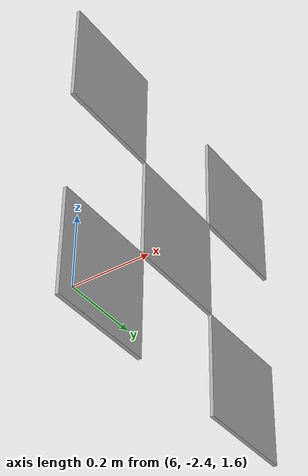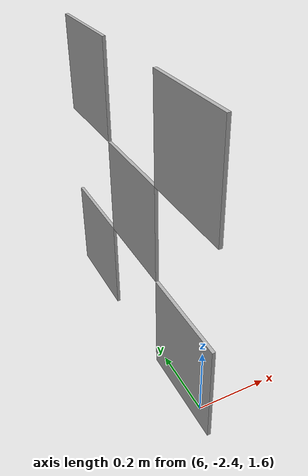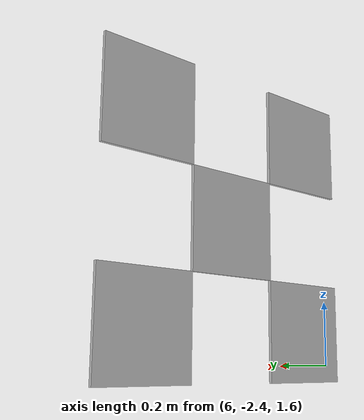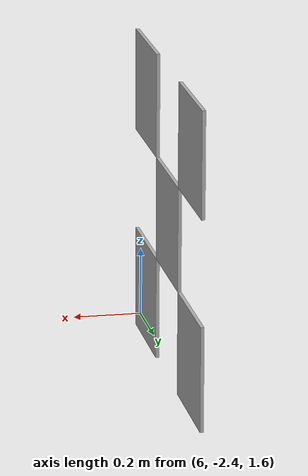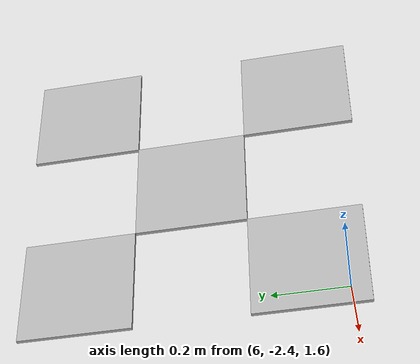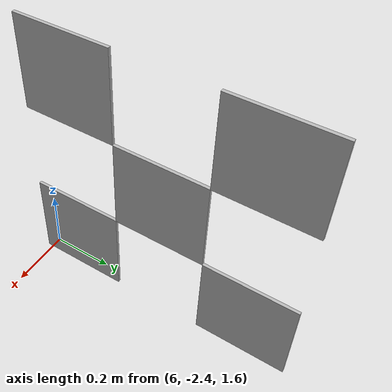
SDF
<?xml version="1.0" ?>
<sdf version="1.4">

	<model name='tag_bundle2'>

		<static>True</static>

		<link name="tag_5">

			<pose>6 -2 2 -1.5713 0 0</pose>

			<inertial>
	        	<mass>0.1</mass>

	        	<inertia>
					<ixx>0.0166667</ixx>
					<ixy>0</ixy>
					<ixz>0</ixz>
					<iyy>0.0166667</iyy>
					<iyz>0</iyz>
					<izz>0.0166667</izz>
        		</inertia>

        		<pose frame=''>0 0 0 0 -0 0</pose>
      		</inertial>

			<pose frame=''>0 0 0 0 -0 0</pose>
			<gravity>1</gravity>
			<self_collide>0</self_collide>
			<kinematic>0</kinematic>
			<enable_wind>0</enable_wind>

			<visual name='visual_5'>
				<pose frame=''>0 0 0 0 -0 0</pose>

		        <geometry>
		        	<box>
		        	<size>0.01 0.3 0.3</size>
		        	</box>
		        </geometry>

		        <material>
		        	<lighting>0</lighting>

		        	<script>
		        		<uri>models://media/materials/scripts/Apriltag.material</uri>
		        		<name>Apriltag/id5</name>
		          	</script>

		        	<shader type='vertex'>
		        		<normal_map>__default__</normal_map>
		          	</shader>

		        	<ambient>0.3 0.3 0.3 1</ambient>
		        	<diffuse>0.7 0.7 0.7 1</diffuse>
		        	<specular>0.01 0.01 0.01 1</specular>
		        	<emissive>0 0 0 1</emissive>
		        </material>

		        <transparency>0</transparency>
		        <cast_shadows>1</cast_shadows>
			</visual>

			<collision name='collision_5'>
				<laser_retro>0</laser_retro>
        		<max_contacts>10</max_contacts>
        		<pose frame=''>0 0 0 0 -0 0</pose>

		        <geometry>
		        	<box>
		        		<size>0.01 0.3 0.3</size>
		        	</box>
		        </geometry>

		        <surface>
		        	<friction>
		            	<ode>
		            		<mu>1</mu>
		            		<mu2>1</mu2>
		            		<fdir1>0 0 0</fdir1>
		            		<slip1>0</slip1>
		            		<slip2>0</slip2>
		            	</ode>

		           		<torsional>
		            		<coefficient>1</coefficient>
	            			<patch_radius>0</patch_radius>
	            			<surface_radius>0</surface_radius>
	            			<use_patch_radius>1</use_patch_radius>

	            			<ode>
		                		<slip>0</slip>
		              		</ode>
		            	</torsional>
		          	</friction>

		        	<bounce>
		            	<restitution_coefficient>0</restitution_coefficient>
		            	<threshold>1e+06</threshold>
		        	</bounce>

		        	<contact>
		            	<collide_without_contact>0</collide_without_contact>
		            	<collide_without_contact_bitmask>1</collide_without_contact_bitmask>
		            	<collide_bitmask>1</collide_bitmask>

		            	<ode>
		            		<soft_cfm>0</soft_cfm>
		            		<soft_erp>0.2</soft_erp>
		            		<kp>1e+13</kp>
		            		<kd>1</kd>
		            		<max_vel>0.01</max_vel>
		            		<min_depth>0</min_depth>
		            	</ode>

			            <bullet>
			            	<split_impulse>1</split_impulse>
			            	<split_impulse_penetration_threshold>-0.01</split_impulse_penetration_threshold>
			            	<soft_cfm>0</soft_cfm>
			            	<soft_erp>0.2</soft_erp>
			            	<kp>1e+13</kp>
			            	<kd>1</kd>
			            </bullet>
		        	</contact>
		        </surface>
		    </collision>
		</link>
 -->
		<link name="tag_6">

			<pose>6 -2.3 2.3 -1.5713 0 0</pose>

			<inertial>
	        	<mass>0.1</mass>

	        	<inertia>
					<ixx>0.0166667</ixx>
					<ixy>0</ixy>
					<ixz>0</ixz>
					<iyy>0.0166667</iyy>
					<iyz>0</iyz>
					<izz>0.0166667</izz>
        		</inertia>

        		<pose frame=''>0 0 0 0 -0 0</pose>
      		</inertial>

			<pose frame=''>0 0 0 0 -0 0</pose>
			<gravity>1</gravity>
			<self_collide>0</self_collide>
			<kinematic>0</kinematic>
			<enable_wind>0</enable_wind>

			<visual name='visual_6'>
				<pose frame=''>0 0 0 0 -0 0</pose>

		        <geometry>
		        	<box>
		        	<size>0.01 0.3 0.3</size>
		        	</box>
		        </geometry>

		        <material>
		        	<lighting>0</lighting>

		        	<script>
		        		<uri>models://media/materials/scripts/Apriltag.material</uri>
		        		<name>Apriltag/id6</name>
		          	</script>

		        	<shader type='vertex'>
		        		<normal_map>__default__</normal_map>
		          	</shader>

		        	<ambient>0.3 0.3 0.3 1</ambient>
		        	<diffuse>0.7 0.7 0.7 1</diffuse>
		        	<specular>0.01 0.01 0.01 1</specular>
		        	<emissive>0 0 0 1</emissive>
		        </material>

		        <transparency>0</transparency>
		        <cast_shadows>1</cast_shadows>
			</visual>

			<collision name='collision_6'>
				<laser_retro>0</laser_retro>
        		<max_contacts>10</max_contacts>
        		<pose frame=''>0 0 0 0 -0 0</pose>

		        <geometry>
		        	<box>
		        		<size>0.01 0.3 0.3</size>
		        	</box>
		        </geometry>

		        <surface>
		        	<friction>
		            	<ode>
		            		<mu>1</mu>
		            		<mu2>1</mu2>
		            		<fdir1>0 0 0</fdir1>
		            		<slip1>0</slip1>
		            		<slip2>0</slip2>
		            	</ode>

		           		<torsional>
		            		<coefficient>1</coefficient>
	            			<patch_radius>0</patch_radius>
	            			<surface_radius>0</surface_radius>
	            			<use_patch_radius>1</use_patch_radius>

	            			<ode>
		                		<slip>0</slip>
		              		</ode>
		            	</torsional>
		          	</friction>

		        	<bounce>
		            	<restitution_coefficient>0</restitution_coefficient>
		            	<threshold>1e+06</threshold>
		        	</bounce>

		        	<contact>
		            	<collide_without_contact>0</collide_without_contact>
		            	<collide_without_contact_bitmask>1</collide_without_contact_bitmask>
		            	<collide_bitmask>1</collide_bitmask>

		            	<ode>
		            		<soft_cfm>0</soft_cfm>
		            		<soft_erp>0.2</soft_erp>
		            		<kp>1e+13</kp>
		            		<kd>1</kd>
		            		<max_vel>0.01</max_vel>
		            		<min_depth>0</min_depth>
		            	</ode>

			            <bullet>
			            	<split_impulse>1</split_impulse>
			            	<split_impulse_penetration_threshold>-0.01</split_impulse_penetration_threshold>
			            	<soft_cfm>0</soft_cfm>
			            	<soft_erp>0.2</soft_erp>
			            	<kp>1e+13</kp>
			            	<kd>1</kd>
			            </bullet>
		        	</contact>
		        </surface>
		    </collision>
		</link>

		<link name="tag_7">

			<pose>6 -1.7 2.3 -1.5713 0 0</pose>

			<inertial>
	        	<mass>0.1</mass>

	        	<inertia>
					<ixx>0.0166667</ixx>
					<ixy>0</ixy>
					<ixz>0</ixz>
					<iyy>0.0166667</iyy>
					<iyz>0</iyz>
					<izz>0.0166667</izz>
        		</inertia>

        		<pose frame=''>0 0 0 0 -0 0</pose>
      		</inertial>

			<pose frame=''>0 0 0 0 -0 0</pose>
			<gravity>1</gravity>
			<self_collide>0</self_collide>
			<kinematic>0</kinematic>
			<enable_wind>0</enable_wind>

			<visual name='visual_7'>
				<pose frame=''>0 0 0 0 -0 0</pose>

		        <geometry>
		        	<box>
		        	<size>0.01 0.3 0.3</size>
		        	</box>
		        </geometry>

		        <material>
		        	<lighting>0</lighting>

		        	<script>
		        		<uri>models://media/materials/scripts/Apriltag.material</uri>
		        		<name>Apriltag/id7</name>
		          	</script>

		        	<shader type='vertex'>
		        		<normal_map>__default__</normal_map>
		          	</shader>

		        	<ambient>0.3 0.3 0.3 1</ambient>
		        	<diffuse>0.7 0.7 0.7 1</diffuse>
		        	<specular>0.01 0.01 0.01 1</specular>
		        	<emissive>0 0 0 1</emissive>
		        </material>

		        <transparency>0</transparency>
		        <cast_shadows>1</cast_shadows>
			</visual>

			<collision name='collision_7'>
				<laser_retro>0</laser_retro>
        		<max_contacts>10</max_contacts>
        		<pose frame=''>0 0 0 0 -0 0</pose>

		        <geometry>
		        	<box>
		        		<size>0.01 0.3 0.3</size>
		        	</box>
		        </geometry>

		        <surface>
		        	<friction>
		            	<ode>
		            		<mu>1</mu>
		            		<mu2>1</mu2>
		            		<fdir1>0 0 0</fdir1>
		            		<slip1>0</slip1>
		            		<slip2>0</slip2>
		            	</ode>

		           		<torsional>
		            		<coefficient>1</coefficient>
	            			<patch_radius>0</patch_radius>
	            			<surface_radius>0</surface_radius>
	            			<use_patch_radius>1</use_patch_radius>

	            			<ode>
		                		<slip>0</slip>
		              		</ode>
		            	</torsional>
		          	</friction>

		        	<bounce>
		            	<restitution_coefficient>0</restitution_coefficient>
		            	<threshold>1e+06</threshold>
		        	</bounce>

		        	<contact>
		            	<collide_without_contact>0</collide_without_contact>
		            	<collide_without_contact_bitmask>1</collide_without_contact_bitmask>
		            	<collide_bitmask>1</collide_bitmask>

		            	<ode>
		            		<soft_cfm>0</soft_cfm>
		            		<soft_erp>0.2</soft_erp>
		            		<kp>1e+13</kp>
		            		<kd>1</kd>
		            		<max_vel>0.01</max_vel>
		            		<min_depth>0</min_depth>
		            	</ode>

			            <bullet>
			            	<split_impulse>1</split_impulse>
			            	<split_impulse_penetration_threshold>-0.01</split_impulse_penetration_threshold>
			            	<soft_cfm>0</soft_cfm>
			            	<soft_erp>0.2</soft_erp>
			            	<kp>1e+13</kp>
			            	<kd>1</kd>
			            </bullet>
		        	</contact>
		        </surface>
		    </collision>
		</link>

		<link name="tag_8">

			<pose>6 -1.7 1.7 -1.5713 0 0</pose>

			<inertial>
	        	<mass>0.1</mass>

	        	<inertia>
					<ixx>0.0166667</ixx>
					<ixy>0</ixy>
					<ixz>0</ixz>
					<iyy>0.0166667</iyy>
					<iyz>0</iyz>
					<izz>0.0166667</izz>
        		</inertia>

        		<pose frame=''>0 0 0 0 -0 0</pose>
      		</inertial>

			<pose frame=''>0 0 0 0 -0 0</pose>
			<gravity>1</gravity>
			<self_collide>0</self_collide>
			<kinematic>0</kinematic>
			<enable_wind>0</enable_wind>

			<visual name='visual_8'>
				<pose frame=''>0 0 0 0 -0 0</pose>

		        <geometry>
		        	<box>
		        	<size>0.01 0.3 0.3</size>
		        	</box>
		        </geometry>

		        <material>
		        	<lighting>0</lighting>

		        	<script>
		        		<uri>models://media/materials/scripts/Apriltag.material</uri>
		        		<name>Apriltag/id8</name>
		          	</script>

		        	<shader type='vertex'>
		        		<normal_map>__default__</normal_map>
		          	</shader>

		        	<ambient>0.3 0.3 0.3 1</ambient>
		        	<diffuse>0.7 0.7 0.7 1</diffuse>
		        	<specular>0.01 0.01 0.01 1</specular>
		        	<emissive>0 0 0 1</emissive>
		        </material>

		        <transparency>0</transparency>
		        <cast_shadows>1</cast_shadows>
			</visual>

			<collision name='collision_8'>
				<laser_retro>0</laser_retro>
        		<max_contacts>10</max_contacts>
        		<pose frame=''>0 0 0 0 -0 0</pose>

		        <geometry>
		        	<box>
		        		<size>0.01 0.3 0.3</size>
		        	</box>
		        </geometry>

		        <surface>
		        	<friction>
		            	<ode>
		            		<mu>1</mu>
		            		<mu2>1</mu2>
		            		<fdir1>0 0 0</fdir1>
		            		<slip1>0</slip1>
		            		<slip2>0</slip2>
		            	</ode>

		           		<torsional>
		            		<coefficient>1</coefficient>
	            			<patch_radius>0</patch_radius>
	            			<surface_radius>0</surface_radius>
	            			<use_patch_radius>1</use_patch_radius>

	            			<ode>
		                		<slip>0</slip>
		              		</ode>
		            	</torsional>
		          	</friction>

		        	<bounce>
		            	<restitution_coefficient>0</restitution_coefficient>
		            	<threshold>1e+06</threshold>
		        	</bounce>

		        	<contact>
		            	<collide_without_contact>0</collide_without_contact>
		            	<collide_without_contact_bitmask>1</collide_without_contact_bitmask>
		            	<collide_bitmask>1</collide_bitmask>

		            	<ode>
		            		<soft_cfm>0</soft_cfm>
		            		<soft_erp>0.2</soft_erp>
		            		<kp>1e+13</kp>
		            		<kd>1</kd>
		            		<max_vel>0.01</max_vel>
		            		<min_depth>0</min_depth>
		            	</ode>

			            <bullet>
			            	<split_impulse>1</split_impulse>
			            	<split_impulse_penetration_threshold>-0.01</split_impulse_penetration_threshold>
			            	<soft_cfm>0</soft_cfm>
			            	<soft_erp>0.2</soft_erp>
			            	<kp>1e+13</kp>
			            	<kd>1</kd>
			            </bullet>
		        	</contact>
		        </surface>
		    </collision>
		</link>

		<link name="tag_9">

			<pose>6 -2.3 1.7 -1.5713 0 0</pose>

			<inertial>
	        	<mass>0.1</mass>

	        	<inertia>
					<ixx>0.0166667</ixx>
					<ixy>0</ixy>
					<ixz>0</ixz>
					<iyy>0.0166667</iyy>
					<iyz>0</iyz>
					<izz>0.0166667</izz>
        		</inertia>

        		<pose frame=''>0 0 0 0 -0 0</pose>
      		</inertial>

			<pose frame=''>0 0 0 0 -0 0</pose>
			<gravity>1</gravity>
			<self_collide>0</self_collide>
			<kinematic>0</kinematic>
			<enable_wind>0</enable_wind>

			<visual name='visual_9'>
				<pose frame=''>0 0 0 0 -0 0</pose>

		        <geometry>
		        	<box>
		        	<size>0.01 0.3 0.3</size>
		        	</box>
		        </geometry>

		        <material>
		        	<lighting>0</lighting>

		        	<script>
		        		<uri>models://media/materials/scripts/Apriltag.material</uri>
		        		<name>Apriltag/id9</name>
		          	</script>

		        	<shader type='vertex'>
		        		<normal_map>__default__</normal_map>
		          	</shader>

		        	<ambient>0.3 0.3 0.3 1</ambient>
		        	<diffuse>0.7 0.7 0.7 1</diffuse>
		        	<specular>0.01 0.01 0.01 1</specular>
		        	<emissive>0 0 0 1</emissive>
		        </material>

		        <transparency>0</transparency>
		        <cast_shadows>1</cast_shadows>
			</visual>

			<collision name='collision_9'>
				<laser_retro>0</laser_retro>
        		<max_contacts>10</max_contacts>
        		<pose frame=''>0 0 0 0 -0 0</pose>

		        <geometry>
		        	<box>
		        		<size>0.01 0.3 0.3</size>
		        	</box>
		        </geometry>

		        <surface>
		        	<friction>
		            	<ode>
		            		<mu>1</mu>
		            		<mu2>1</mu2>
		            		<fdir1>0 0 0</fdir1>
		            		<slip1>0</slip1>
		            		<slip2>0</slip2>
		            	</ode>

		           		<torsional>
		            		<coefficient>1</coefficient>
	            			<patch_radius>0</patch_radius>
	            			<surface_radius>0</surface_radius>
	            			<use_patch_radius>1</use_patch_radius>

	            			<ode>
		                		<slip>0</slip>
		              		</ode>
		            	</torsional>
		          	</friction>

		        	<bounce>
		            	<restitution_coefficient>0</restitution_coefficient>
		            	<threshold>1e+06</threshold>
		        	</bounce>

		        	<contact>
		            	<collide_without_contact>0</collide_without_contact>
		            	<collide_without_contact_bitmask>1</collide_without_contact_bitmask>
		            	<collide_bitmask>1</collide_bitmask>

		            	<ode>
		            		<soft_cfm>0</soft_cfm>
		            		<soft_erp>0.2</soft_erp>
		            		<kp>1e+13</kp>
		            		<kd>1</kd>
		            		<max_vel>0.01</max_vel>
		            		<min_depth>0</min_depth>
		            	</ode>

			            <bullet>
			            	<split_impulse>1</split_impulse>
			            	<split_impulse_penetration_threshold>-0.01</split_impulse_penetration_threshold>
			            	<soft_cfm>0</soft_cfm>
			            	<soft_erp>0.2</soft_erp>
			            	<kp>1e+13</kp>
			            	<kd>1</kd>
			            </bullet>
		        	</contact>
		        </surface>
		    </collision>
		</link>

		<joint name = "joint_1" type="fixed">
			<axis xyz="0 0 0" />
			<parent link="tag_5" />
			<child link="tag_6" />
	    </joint>

	    <joint name = "joint_2" type="fixed">
			<axis xyz="0 0 0" />
			<parent link="tag_5" />
			<child link="tag_7" />
	    </joint>

	    <joint name = "joint_3" type="fixed">
			<axis xyz="0 0 0" />
			<parent link="tag_5" />
			<child link="tag_8" />
	    </joint>

	    <joint name = "joint_4" type="fixed">
			<axis xyz="0 0 0" />
			<parent link="tag_5" />
			<child link="tag_9" />
	    </joint>

	</model>
</sdf>
